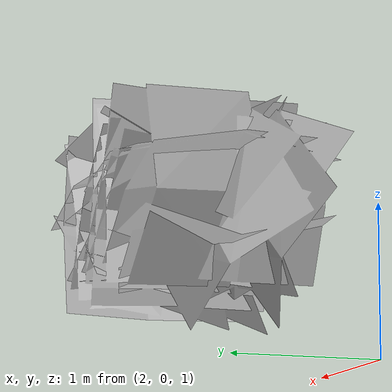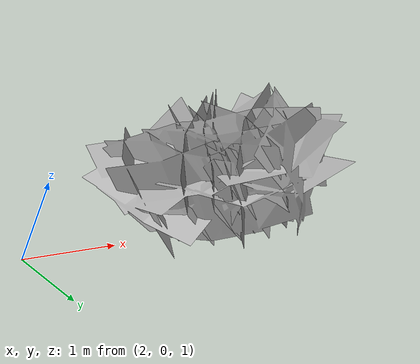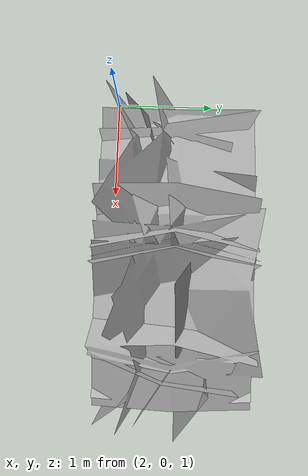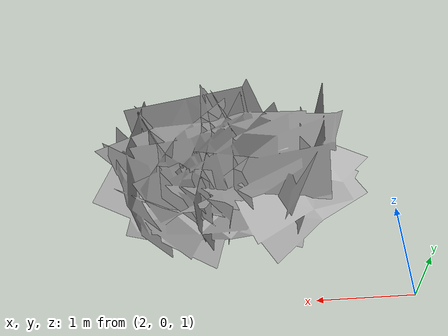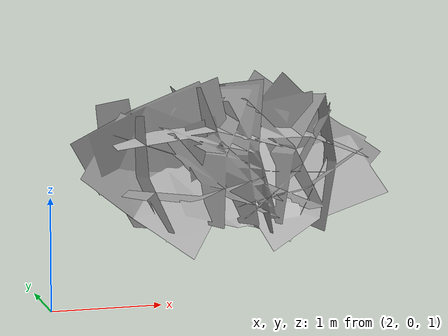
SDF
<?xml version="1.0" ?>
<sdf version="1.9">
  <model name="hedge_01">
    <static>true</static>
    <link name="link">
      <collision name="collision">
        <pose>0 0 0.75 0 0 0</pose>
        <geometry>
          <box>
            <size>2.0 1.0 1.5</size>
          </box>
        </geometry>
      </collision>
      <visual name="visual">
        <geometry>
          <mesh>
            <uri>model://hedge_01/meshes/Hedge-01.obj</uri>
          </mesh>
        </geometry>
      </visual>
    </link>
  </model>
</sdf>
